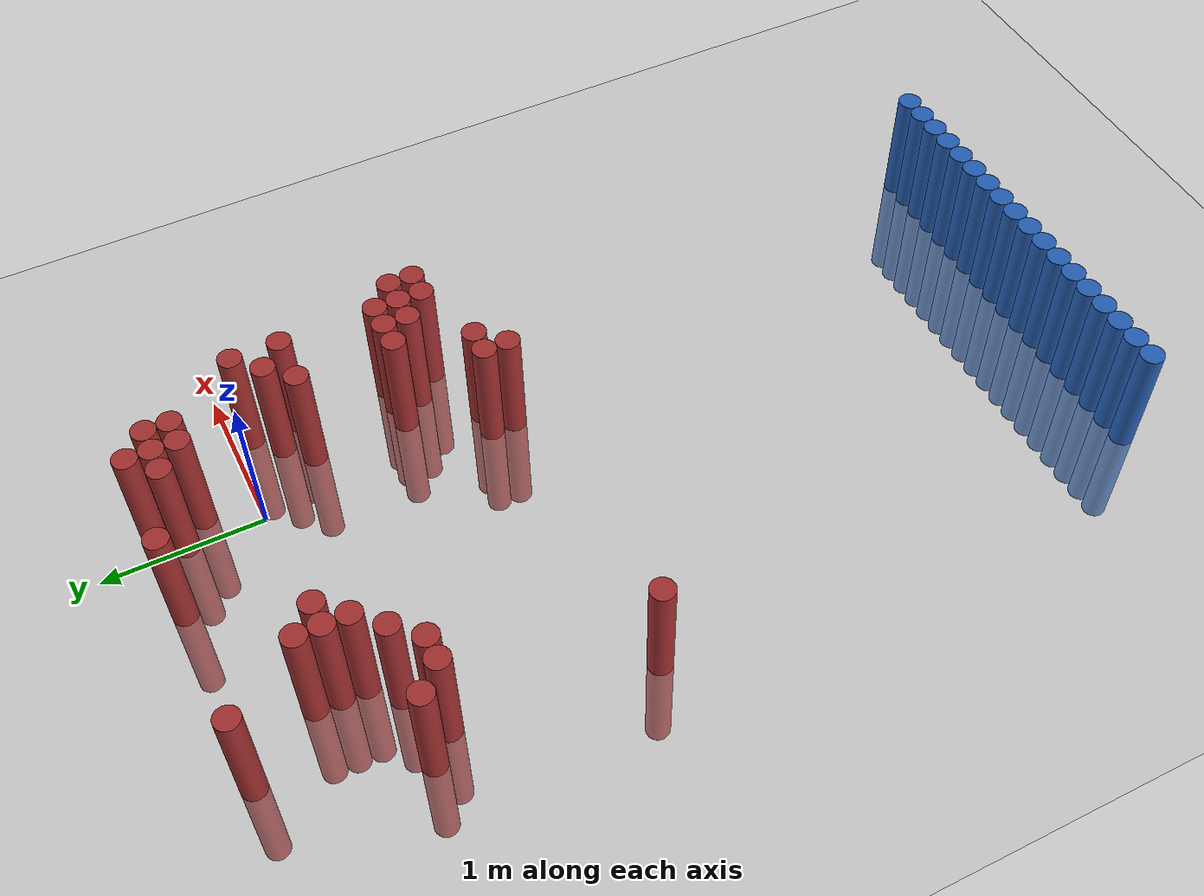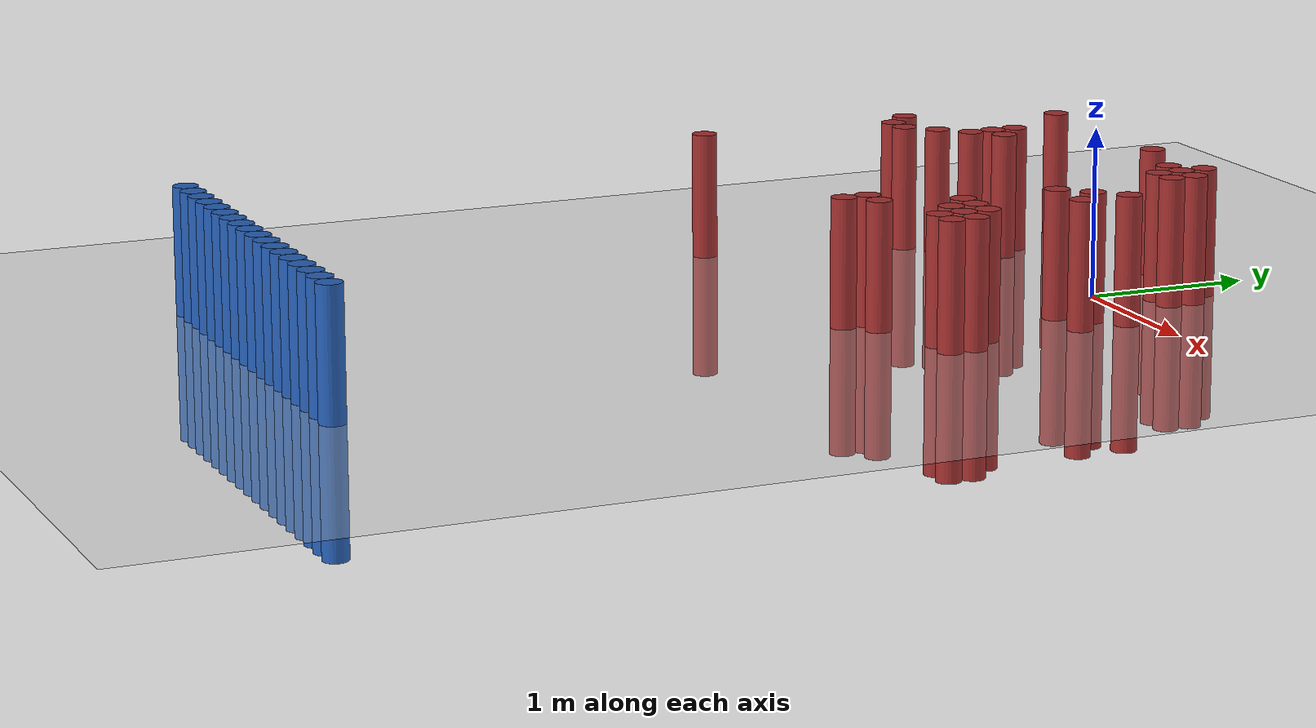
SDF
<sdf version="1.6">
 <world name="default">
  <model name="ground_plane">
   <static>1</static>
   <link name="link">
    <collision name="collision">
     <geometry><plane><normal>0 0 1</normal><size>100 100</size></plane></geometry>
     <surface><friction><ode><mu>100</mu><mu2>50</mu2></ode></friction></surface>
    </collision>
    <visual name="visual">
     <cast_shadows>0</cast_shadows>
     <geometry><plane><normal>0 0 1</normal><size>100 100</size></plane></geometry>
     <material>
      <script><uri>file://media/materials/scripts/gazebo.material</uri><name>Gazebo/Grey</name></script>
     </material>
    </visual>
   </link>
  </model>
  <model name="unit_cylinder_21">
   <static>1</static>
   <pose>0.775000 -4.925000 0.000000 0.000000 0.000000 0.000000</pose>
   <link name="link">
    <inertial>
     <mass>1</mass>
     <inertia><ixx>0.145833</ixx><ixy>0</ixy><ixz>0</ixz><iyy>0.145833</iyy><iyz>0</iyz><izz>0.125</izz></inertia>
    </inertial>
    <collision name="collision">
     <geometry><cylinder><radius>0.075000</radius><length>1.5</length></cylinder></geometry>
    </collision>
    <visual name="visual">
     <geometry><cylinder><radius>0.075000</radius><length>1.5</length></cylinder></geometry>
     <material>
      <ambient>0.152000 0.379000 0.720000 1</ambient>
      <diffuse>0.152000 0.379000 0.720000 1</diffuse>
     </material>
     <material>
      <script><name>Gazebo/Grey</name><uri>file://media/materials/scripts/gazebo.material</uri></script>
     </material>
    </visual>
   </link>
  </model>
  <model name="unit_cylinder_22">
   <static>1</static>
   <pose>0.625000 -4.925000 0.000000 0.000000 0.000000 0.000000</pose>
   <link name="link">
    <inertial>
     <mass>1</mass>
     <inertia><ixx>0.145833</ixx><ixy>0</ixy><ixz>0</ixz><iyy>0.145833</iyy><iyz>0</iyz><izz>0.125</izz></inertia>
    </inertial>
    <collision name="collision">
     <geometry><cylinder><radius>0.075000</radius><length>1.5</length></cylinder></geometry>
    </collision>
    <visual name="visual">
     <geometry><cylinder><radius>0.075000</radius><length>1.5</length></cylinder></geometry>
     <material>
      <ambient>0.152000 0.379000 0.720000 1</ambient>
      <diffuse>0.152000 0.379000 0.720000 1</diffuse>
     </material>
     <material>
      <script><name>Gazebo/Grey</name><uri>file://media/materials/scripts/gazebo.material</uri></script>
     </material>
    </visual>
   </link>
  </model>
  <model name="unit_cylinder_23">
   <static>1</static>
   <pose>0.475000 -4.925000 0.000000 0.000000 0.000000 0.000000</pose>
   <link name="link">
    <inertial>
     <mass>1</mass>
     <inertia><ixx>0.145833</ixx><ixy>0</ixy><ixz>0</ixz><iyy>0.145833</iyy><iyz>0</iyz><izz>0.125</izz></inertia>
    </inertial>
    <collision name="collision">
     <geometry><cylinder><radius>0.075000</radius><length>1.5</length></cylinder></geometry>
    </collision>
    <visual name="visual">
     <geometry><cylinder><radius>0.075000</radius><length>1.5</length></cylinder></geometry>
     <material>
      <ambient>0.152000 0.379000 0.720000 1</ambient>
      <diffuse>0.152000 0.379000 0.720000 1</diffuse>
     </material>
     <material>
      <script><name>Gazebo/Grey</name><uri>file://media/materials/scripts/gazebo.material</uri></script>
     </material>
    </visual>
   </link>
  </model>
  <model name="unit_cylinder_24">
   <static>1</static>
   <pose>0.325000 -4.925000 0.000000 0.000000 0.000000 0.000000</pose>
   <link name="link">
    <inertial>
     <mass>1</mass>
     <inertia><ixx>0.145833</ixx><ixy>0</ixy><ixz>0</ixz><iyy>0.145833</iyy><iyz>0</iyz><izz>0.125</izz></inertia>
    </inertial>
    <collision name="collision">
     <geometry><cylinder><radius>0.075000</radius><length>1.5</length></cylinder></geometry>
    </collision>
    <visual name="visual">
     <geometry><cylinder><radius>0.075000</radius><length>1.5</length></cylinder></geometry>
     <material>
      <ambient>0.152000 0.379000 0.720000 1</ambient>
      <diffuse>0.152000 0.379000 0.720000 1</diffuse>
     </material>
     <material>
      <script><name>Gazebo/Grey</name><uri>file://media/materials/scripts/gazebo.material</uri></script>
     </material>
    </visual>
   </link>
  </model>
  <model name="unit_cylinder_25">
   <static>1</static>
   <pose>0.175000 -4.925000 0.000000 0.000000 0.000000 0.000000</pose>
   <link name="link">
    <inertial>
     <mass>1</mass>
     <inertia><ixx>0.145833</ixx><ixy>0</ixy><ixz>0</ixz><iyy>0.145833</iyy><iyz>0</iyz><izz>0.125</izz></inertia>
    </inertial>
    <collision name="collision">
     <geometry><cylinder><radius>0.075000</radius><length>1.5</length></cylinder></geometry>
    </collision>
    <visual name="visual">
     <geometry><cylinder><radius>0.075000</radius><length>1.5</length></cylinder></geometry>
     <material>
      <ambient>0.152000 0.379000 0.720000 1</ambient>
      <diffuse>0.152000 0.379000 0.720000 1</diffuse>
     </material>
     <material>
      <script><name>Gazebo/Grey</name><uri>file://media/materials/scripts/gazebo.material</uri></script>
     </material>
    </visual>
   </link>
  </model>
  <model name="unit_cylinder_26">
   <static>1</static>
   <pose>0.025000 -4.925000 0.000000 0.000000 0.000000 0.000000</pose>
   <link name="link">
    <inertial>
     <mass>1</mass>
     <inertia><ixx>0.145833</ixx><ixy>0</ixy><ixz>0</ixz><iyy>0.145833</iyy><iyz>0</iyz><izz>0.125</izz></inertia>
    </inertial>
    <collision name="collision">
     <geometry><cylinder><radius>0.075000</radius><length>1.5</length></cylinder></geometry>
    </collision>
    <visual name="visual">
     <geometry><cylinder><radius>0.075000</radius><length>1.5</length></cylinder></geometry>
     <material>
      <ambient>0.152000 0.379000 0.720000 1</ambient>
      <diffuse>0.152000 0.379000 0.720000 1</diffuse>
     </material>
     <material>
      <script><name>Gazebo/Grey</name><uri>file://media/materials/scripts/gazebo.material</uri></script>
     </material>
    </visual>
   </link>
  </model>
  <model name="unit_cylinder_27">
   <static>1</static>
   <pose>-0.125000 -4.925000 0.000000 0.000000 0.000000 0.000000</pose>
   <link name="link">
    <inertial>
     <mass>1</mass>
     <inertia><ixx>0.145833</ixx><ixy>0</ixy><ixz>0</ixz><iyy>0.145833</iyy><iyz>0</iyz><izz>0.125</izz></inertia>
    </inertial>
    <collision name="collision">
     <geometry><cylinder><radius>0.075000</radius><length>1.5</length></cylinder></geometry>
    </collision>
    <visual name="visual">
     <geometry><cylinder><radius>0.075000</radius><length>1.5</length></cylinder></geometry>
     <material>
      <ambient>0.152000 0.379000 0.720000 1</ambient>
      <diffuse>0.152000 0.379000 0.720000 1</diffuse>
     </material>
     <material>
      <script><name>Gazebo/Grey</name><uri>file://media/materials/scripts/gazebo.material</uri></script>
     </material>
    </visual>
   </link>
  </model>
  <model name="unit_cylinder_28">
   <static>1</static>
   <pose>-0.275000 -4.925000 0.000000 0.000000 0.000000 0.000000</pose>
   <link name="link">
    <inertial>
     <mass>1</mass>
     <inertia><ixx>0.145833</ixx><ixy>0</ixy><ixz>0</ixz><iyy>0.145833</iyy><iyz>0</iyz><izz>0.125</izz></inertia>
    </inertial>
    <collision name="collision">
     <geometry><cylinder><radius>0.075000</radius><length>1.5</length></cylinder></geometry>
    </collision>
    <visual name="visual">
     <geometry><cylinder><radius>0.075000</radius><length>1.5</length></cylinder></geometry>
     <material>
      <ambient>0.152000 0.379000 0.720000 1</ambient>
      <diffuse>0.152000 0.379000 0.720000 1</diffuse>
     </material>
     <material>
      <script><name>Gazebo/Grey</name><uri>file://media/materials/scripts/gazebo.material</uri></script>
     </material>
    </visual>
   </link>
  </model>
  <model name="unit_cylinder_29">
   <static>1</static>
   <pose>-0.425000 -4.925000 0.000000 0.000000 0.000000 0.000000</pose>
   <link name="link">
    <inertial>
     <mass>1</mass>
     <inertia><ixx>0.145833</ixx><ixy>0</ixy><ixz>0</ixz><iyy>0.145833</iyy><iyz>0</iyz><izz>0.125</izz></inertia>
    </inertial>
    <collision name="collision">
     <geometry><cylinder><radius>0.075000</radius><length>1.5</length></cylinder></geometry>
    </collision>
    <visual name="visual">
     <geometry><cylinder><radius>0.075000</radius><length>1.5</length></cylinder></geometry>
     <material>
      <ambient>0.152000 0.379000 0.720000 1</ambient>
      <diffuse>0.152000 0.379000 0.720000 1</diffuse>
     </material>
     <material>
      <script><name>Gazebo/Grey</name><uri>file://media/materials/scripts/gazebo.material</uri></script>
     </material>
    </visual>
   </link>
  </model>
  <model name="unit_cylinder_30">
   <static>1</static>
   <pose>-0.575000 -4.925000 0.000000 0.000000 0.000000 0.000000</pose>
   <link name="link">
    <inertial>
     <mass>1</mass>
     <inertia><ixx>0.145833</ixx><ixy>0</ixy><ixz>0</ixz><iyy>0.145833</iyy><iyz>0</iyz><izz>0.125</izz></inertia>
    </inertial>
    <collision name="collision">
     <geometry><cylinder><radius>0.075000</radius><length>1.5</length></cylinder></geometry>
    </collision>
    <visual name="visual">
     <geometry><cylinder><radius>0.075000</radius><length>1.5</length></cylinder></geometry>
     <material>
      <ambient>0.152000 0.379000 0.720000 1</ambient>
      <diffuse>0.152000 0.379000 0.720000 1</diffuse>
     </material>
     <material>
      <script><name>Gazebo/Grey</name><uri>file://media/materials/scripts/gazebo.material</uri></script>
     </material>
    </visual>
   </link>
  </model>
  <model name="unit_cylinder_31">
   <static>1</static>
   <pose>-0.725000 -4.925000 0.000000 0.000000 0.000000 0.000000</pose>
   <link name="link">
    <inertial>
     <mass>1</mass>
     <inertia><ixx>0.145833</ixx><ixy>0</ixy><ixz>0</ixz><iyy>0.145833</iyy><iyz>0</iyz><izz>0.125</izz></inertia>
    </inertial>
    <collision name="collision">
     <geometry><cylinder><radius>0.075000</radius><length>1.5</length></cylinder></geometry>
    </collision>
    <visual name="visual">
     <geometry><cylinder><radius>0.075000</radius><length>1.5</length></cylinder></geometry>
     <material>
      <ambient>0.152000 0.379000 0.720000 1</ambient>
      <diffuse>0.152000 0.379000 0.720000 1</diffuse>
     </material>
     <material>
      <script><name>Gazebo/Grey</name><uri>file://media/materials/scripts/gazebo.material</uri></script>
     </material>
    </visual>
   </link>
  </model>
  <model name="unit_cylinder_32">
   <static>1</static>
   <pose>-0.875000 -4.925000 0.000000 0.000000 0.000000 0.000000</pose>
   <link name="link">
    <inertial>
     <mass>1</mass>
     <inertia><ixx>0.145833</ixx><ixy>0</ixy><ixz>0</ixz><iyy>0.145833</iyy><iyz>0</iyz><izz>0.125</izz></inertia>
    </inertial>
    <collision name="collision">
     <geometry><cylinder><radius>0.075000</radius><length>1.5</length></cylinder></geometry>
    </collision>
    <visual name="visual">
     <geometry><cylinder><radius>0.075000</radius><length>1.5</length></cylinder></geometry>
     <material>
      <ambient>0.152000 0.379000 0.720000 1</ambient>
      <diffuse>0.152000 0.379000 0.720000 1</diffuse>
     </material>
     <material>
      <script><name>Gazebo/Grey</name><uri>file://media/materials/scripts/gazebo.material</uri></script>
     </material>
    </visual>
   </link>
  </model>
  <model name="unit_cylinder_33">
   <static>1</static>
   <pose>-1.025000 -4.925000 0.000000 0.000000 0.000000 0.000000</pose>
   <link name="link">
    <inertial>
     <mass>1</mass>
     <inertia><ixx>0.145833</ixx><ixy>0</ixy><ixz>0</ixz><iyy>0.145833</iyy><iyz>0</iyz><izz>0.125</izz></inertia>
    </inertial>
    <collision name="collision">
     <geometry><cylinder><radius>0.075000</radius><length>1.5</length></cylinder></geometry>
    </collision>
    <visual name="visual">
     <geometry><cylinder><radius>0.075000</radius><length>1.5</length></cylinder></geometry>
     <material>
      <ambient>0.152000 0.379000 0.720000 1</ambient>
      <diffuse>0.152000 0.379000 0.720000 1</diffuse>
     </material>
     <material>
      <script><name>Gazebo/Grey</name><uri>file://media/materials/scripts/gazebo.material</uri></script>
     </material>
    </visual>
   </link>
  </model>
  <model name="unit_cylinder_34">
   <static>1</static>
   <pose>-1.175000 -4.925000 0.000000 0.000000 0.000000 0.000000</pose>
   <link name="link">
    <inertial>
     <mass>1</mass>
     <inertia><ixx>0.145833</ixx><ixy>0</ixy><ixz>0</ixz><iyy>0.145833</iyy><iyz>0</iyz><izz>0.125</izz></inertia>
    </inertial>
    <collision name="collision">
     <geometry><cylinder><radius>0.075000</radius><length>1.5</length></cylinder></geometry>
    </collision>
    <visual name="visual">
     <geometry><cylinder><radius>0.075000</radius><length>1.5</length></cylinder></geometry>
     <material>
      <ambient>0.152000 0.379000 0.720000 1</ambient>
      <diffuse>0.152000 0.379000 0.720000 1</diffuse>
     </material>
     <material>
      <script><name>Gazebo/Grey</name><uri>file://media/materials/scripts/gazebo.material</uri></script>
     </material>
    </visual>
   </link>
  </model>
  <model name="unit_cylinder_35">
   <static>1</static>
   <pose>-1.325000 -4.925000 0.000000 0.000000 0.000000 0.000000</pose>
   <link name="link">
    <inertial>
     <mass>1</mass>
     <inertia><ixx>0.145833</ixx><ixy>0</ixy><ixz>0</ixz><iyy>0.145833</iyy><iyz>0</iyz><izz>0.125</izz></inertia>
    </inertial>
    <collision name="collision">
     <geometry><cylinder><radius>0.075000</radius><length>1.5</length></cylinder></geometry>
    </collision>
    <visual name="visual">
     <geometry><cylinder><radius>0.075000</radius><length>1.5</length></cylinder></geometry>
     <material>
      <ambient>0.152000 0.379000 0.720000 1</ambient>
      <diffuse>0.152000 0.379000 0.720000 1</diffuse>
     </material>
     <material>
      <script><name>Gazebo/Grey</name><uri>file://media/materials/scripts/gazebo.material</uri></script>
     </material>
    </visual>
   </link>
  </model>
  <model name="unit_cylinder_36">
   <static>1</static>
   <pose>-1.475000 -4.925000 0.000000 0.000000 0.000000 0.000000</pose>
   <link name="link">
    <inertial>
     <mass>1</mass>
     <inertia><ixx>0.145833</ixx><ixy>0</ixy><ixz>0</ixz><iyy>0.145833</iyy><iyz>0</iyz><izz>0.125</izz></inertia>
    </inertial>
    <collision name="collision">
     <geometry><cylinder><radius>0.075000</radius><length>1.5</length></cylinder></geometry>
    </collision>
    <visual name="visual">
     <geometry><cylinder><radius>0.075000</radius><length>1.5</length></cylinder></geometry>
     <material>
      <ambient>0.152000 0.379000 0.720000 1</ambient>
      <diffuse>0.152000 0.379000 0.720000 1</diffuse>
     </material>
     <material>
      <script><name>Gazebo/Grey</name><uri>file://media/materials/scripts/gazebo.material</uri></script>
     </material>
    </visual>
   </link>
  </model>
  <model name="unit_cylinder_37">
   <static>1</static>
   <pose>-1.625000 -4.925000 0.000000 0.000000 0.000000 0.000000</pose>
   <link name="link">
    <inertial>
     <mass>1</mass>
     <inertia><ixx>0.145833</ixx><ixy>0</ixy><ixz>0</ixz><iyy>0.145833</iyy><iyz>0</iyz><izz>0.125</izz></inertia>
    </inertial>
    <collision name="collision">
     <geometry><cylinder><radius>0.075000</radius><length>1.5</length></cylinder></geometry>
    </collision>
    <visual name="visual">
     <geometry><cylinder><radius>0.075000</radius><length>1.5</length></cylinder></geometry>
     <material>
      <ambient>0.152000 0.379000 0.720000 1</ambient>
      <diffuse>0.152000 0.379000 0.720000 1</diffuse>
     </material>
     <material>
      <script><name>Gazebo/Grey</name><uri>file://media/materials/scripts/gazebo.material</uri></script>
     </material>
    </visual>
   </link>
  </model>
  <model name="unit_cylinder_38">
   <static>1</static>
   <pose>-1.775000 -4.925000 0.000000 0.000000 0.000000 0.000000</pose>
   <link name="link">
    <inertial>
     <mass>1</mass>
     <inertia><ixx>0.145833</ixx><ixy>0</ixy><ixz>0</ixz><iyy>0.145833</iyy><iyz>0</iyz><izz>0.125</izz></inertia>
    </inertial>
    <collision name="collision">
     <geometry><cylinder><radius>0.075000</radius><length>1.5</length></cylinder></geometry>
    </collision>
    <visual name="visual">
     <geometry><cylinder><radius>0.075000</radius><length>1.5</length></cylinder></geometry>
     <material>
      <ambient>0.152000 0.379000 0.720000 1</ambient>
      <diffuse>0.152000 0.379000 0.720000 1</diffuse>
     </material>
     <material>
      <script><name>Gazebo/Grey</name><uri>file://media/materials/scripts/gazebo.material</uri></script>
     </material>
    </visual>
   </link>
  </model>
  <model name="unit_cylinder_324">
   <static>1</static>
   <pose>-1.925000 -1.625000 0.000000 0.000000 0.000000 0.000000</pose>
   <link name="link">
    <inertial>
     <mass>1</mass>
     <inertia><ixx>0.145833</ixx><ixy>0</ixy><ixz>0</ixz><iyy>0.145833</iyy><iyz>0</iyz><izz>0.125</izz></inertia>
    </inertial>
    <collision name="collision">
     <geometry><cylinder><radius>0.075000</radius><length>1.5</length></cylinder></geometry>
    </collision>
    <visual name="visual">
     <geometry><cylinder><radius>0.075000</radius><length>1.5</length></cylinder></geometry>
     <material>
      <ambient>0.648000 0.192000 0.192000 1</ambient>
      <diffuse>0.648000 0.192000 0.192000 1</diffuse>
     </material>
     <material>
      <script><name>Gazebo/Grey</name><uri>file://media/materials/scripts/gazebo.material</uri></script>
     </material>
    </visual>
   </link>
  </model>
  <model name="unit_cylinder_325">
   <static>1</static>
   <pose>-1.925000 -0.275000 0.000000 0.000000 0.000000 0.000000</pose>
   <link name="link">
    <inertial>
     <mass>1</mass>
     <inertia><ixx>0.145833</ixx><ixy>0</ixy><ixz>0</ixz><iyy>0.145833</iyy><iyz>0</iyz><izz>0.125</izz></inertia>
    </inertial>
    <collision name="collision">
     <geometry><cylinder><radius>0.075000</radius><length>1.5</length></cylinder></geometry>
    </collision>
    <visual name="visual">
     <geometry><cylinder><radius>0.075000</radius><length>1.5</length></cylinder></geometry>
     <material>
      <ambient>0.648000 0.192000 0.192000 1</ambient>
      <diffuse>0.648000 0.192000 0.192000 1</diffuse>
     </material>
     <material>
      <script><name>Gazebo/Grey</name><uri>file://media/materials/scripts/gazebo.material</uri></script>
     </material>
    </visual>
   </link>
  </model>
  <model name="unit_cylinder_329">
   <static>1</static>
   <pose>-1.775000 -0.425000 0.000000 0.000000 0.000000 0.000000</pose>
   <link name="link">
    <inertial>
     <mass>1</mass>
     <inertia><ixx>0.145833</ixx><ixy>0</ixy><ixz>0</ixz><iyy>0.145833</iyy><iyz>0</iyz><izz>0.125</izz></inertia>
    </inertial>
    <collision name="collision">
     <geometry><cylinder><radius>0.075000</radius><length>1.5</length></cylinder></geometry>
    </collision>
    <visual name="visual">
     <geometry><cylinder><radius>0.075000</radius><length>1.5</length></cylinder></geometry>
     <material>
      <ambient>0.648000 0.192000 0.192000 1</ambient>
      <diffuse>0.648000 0.192000 0.192000 1</diffuse>
     </material>
     <material>
      <script><name>Gazebo/Grey</name><uri>file://media/materials/scripts/gazebo.material</uri></script>
     </material>
    </visual>
   </link>
  </model>
  <model name="unit_cylinder_333">
   <static>1</static>
   <pose>-1.625000 -0.425000 0.000000 0.000000 0.000000 0.000000</pose>
   <link name="link">
    <inertial>
     <mass>1</mass>
     <inertia><ixx>0.145833</ixx><ixy>0</ixy><ixz>0</ixz><iyy>0.145833</iyy><iyz>0</iyz><izz>0.125</izz></inertia>
    </inertial>
    <collision name="collision">
     <geometry><cylinder><radius>0.075000</radius><length>1.5</length></cylinder></geometry>
    </collision>
    <visual name="visual">
     <geometry><cylinder><radius>0.075000</radius><length>1.5</length></cylinder></geometry>
     <material>
      <ambient>0.648000 0.192000 0.192000 1</ambient>
      <diffuse>0.648000 0.192000 0.192000 1</diffuse>
     </material>
     <material>
      <script><name>Gazebo/Grey</name><uri>file://media/materials/scripts/gazebo.material</uri></script>
     </material>
    </visual>
   </link>
  </model>
  <model name="unit_cylinder_334">
   <static>1</static>
   <pose>-1.625000 0.625000 0.000000 0.000000 0.000000 0.000000</pose>
   <link name="link">
    <inertial>
     <mass>1</mass>
     <inertia><ixx>0.145833</ixx><ixy>0</ixy><ixz>0</ixz><iyy>0.145833</iyy><iyz>0</iyz><izz>0.125</izz></inertia>
    </inertial>
    <collision name="collision">
     <geometry><cylinder><radius>0.075000</radius><length>1.5</length></cylinder></geometry>
    </collision>
    <visual name="visual">
     <geometry><cylinder><radius>0.075000</radius><length>1.5</length></cylinder></geometry>
     <material>
      <ambient>0.648000 0.192000 0.192000 1</ambient>
      <diffuse>0.648000 0.192000 0.192000 1</diffuse>
     </material>
     <material>
      <script><name>Gazebo/Grey</name><uri>file://media/materials/scripts/gazebo.material</uri></script>
     </material>
    </visual>
   </link>
  </model>
  <model name="unit_cylinder_338">
   <static>1</static>
   <pose>-1.475000 -0.275000 0.000000 0.000000 0.000000 0.000000</pose>
   <link name="link">
    <inertial>
     <mass>1</mass>
     <inertia><ixx>0.145833</ixx><ixy>0</ixy><ixz>0</ixz><iyy>0.145833</iyy><iyz>0</iyz><izz>0.125</izz></inertia>
    </inertial>
    <collision name="collision">
     <geometry><cylinder><radius>0.075000</radius><length>1.5</length></cylinder></geometry>
    </collision>
    <visual name="visual">
     <geometry><cylinder><radius>0.075000</radius><length>1.5</length></cylinder></geometry>
     <material>
      <ambient>0.648000 0.192000 0.192000 1</ambient>
      <diffuse>0.648000 0.192000 0.192000 1</diffuse>
     </material>
     <material>
      <script><name>Gazebo/Grey</name><uri>file://media/materials/scripts/gazebo.material</uri></script>
     </material>
    </visual>
   </link>
  </model>
  <model name="unit_cylinder_341">
   <static>1</static>
   <pose>-1.325000 -0.125000 0.000000 0.000000 0.000000 0.000000</pose>
   <link name="link">
    <inertial>
     <mass>1</mass>
     <inertia><ixx>0.145833</ixx><ixy>0</ixy><ixz>0</ixz><iyy>0.145833</iyy><iyz>0</iyz><izz>0.125</izz></inertia>
    </inertial>
    <collision name="collision">
     <geometry><cylinder><radius>0.075000</radius><length>1.5</length></cylinder></geometry>
    </collision>
    <visual name="visual">
     <geometry><cylinder><radius>0.075000</radius><length>1.5</length></cylinder></geometry>
     <material>
      <ambient>0.648000 0.192000 0.192000 1</ambient>
      <diffuse>0.648000 0.192000 0.192000 1</diffuse>
     </material>
     <material>
      <script><name>Gazebo/Grey</name><uri>file://media/materials/scripts/gazebo.material</uri></script>
     </material>
    </visual>
   </link>
  </model>
  <model name="unit_cylinder_342">
   <static>1</static>
   <pose>-1.325000 0.025000 0.000000 0.000000 0.000000 0.000000</pose>
   <link name="link">
    <inertial>
     <mass>1</mass>
     <inertia><ixx>0.145833</ixx><ixy>0</ixy><ixz>0</ixz><iyy>0.145833</iyy><iyz>0</iyz><izz>0.125</izz></inertia>
    </inertial>
    <collision name="collision">
     <geometry><cylinder><radius>0.075000</radius><length>1.5</length></cylinder></geometry>
    </collision>
    <visual name="visual">
     <geometry><cylinder><radius>0.075000</radius><length>1.5</length></cylinder></geometry>
     <material>
      <ambient>0.648000 0.192000 0.192000 1</ambient>
      <diffuse>0.648000 0.192000 0.192000 1</diffuse>
     </material>
     <material>
      <script><name>Gazebo/Grey</name><uri>file://media/materials/scripts/gazebo.material</uri></script>
     </material>
    </visual>
   </link>
  </model>
  <model name="unit_cylinder_343">
   <static>1</static>
   <pose>-1.325000 0.175000 0.000000 0.000000 0.000000 0.000000</pose>
   <link name="link">
    <inertial>
     <mass>1</mass>
     <inertia><ixx>0.145833</ixx><ixy>0</ixy><ixz>0</ixz><iyy>0.145833</iyy><iyz>0</iyz><izz>0.125</izz></inertia>
    </inertial>
    <collision name="collision">
     <geometry><cylinder><radius>0.075000</radius><length>1.5</length></cylinder></geometry>
    </collision>
    <visual name="visual">
     <geometry><cylinder><radius>0.075000</radius><length>1.5</length></cylinder></geometry>
     <material>
      <ambient>0.648000 0.192000 0.192000 1</ambient>
      <diffuse>0.648000 0.192000 0.192000 1</diffuse>
     </material>
     <material>
      <script><name>Gazebo/Grey</name><uri>file://media/materials/scripts/gazebo.material</uri></script>
     </material>
    </visual>
   </link>
  </model>
  <model name="unit_cylinder_348">
   <static>1</static>
   <pose>-1.175000 0.025000 0.000000 0.000000 0.000000 0.000000</pose>
   <link name="link">
    <inertial>
     <mass>1</mass>
     <inertia><ixx>0.145833</ixx><ixy>0</ixy><ixz>0</ixz><iyy>0.145833</iyy><iyz>0</iyz><izz>0.125</izz></inertia>
    </inertial>
    <collision name="collision">
     <geometry><cylinder><radius>0.075000</radius><length>1.5</length></cylinder></geometry>
    </collision>
    <visual name="visual">
     <geometry><cylinder><radius>0.075000</radius><length>1.5</length></cylinder></geometry>
     <material>
      <ambient>0.648000 0.192000 0.192000 1</ambient>
      <diffuse>0.648000 0.192000 0.192000 1</diffuse>
     </material>
     <material>
      <script><name>Gazebo/Grey</name><uri>file://media/materials/scripts/gazebo.material</uri></script>
     </material>
    </visual>
   </link>
  </model>
  <model name="unit_cylinder_371">
   <static>1</static>
   <pose>-0.425000 0.625000 0.000000 0.000000 0.000000 0.000000</pose>
   <link name="link">
    <inertial>
     <mass>1</mass>
     <inertia><ixx>0.145833</ixx><ixy>0</ixy><ixz>0</ixz><iyy>0.145833</iyy><iyz>0</iyz><izz>0.125</izz></inertia>
    </inertial>
    <collision name="collision">
     <geometry><cylinder><radius>0.075000</radius><length>1.5</length></cylinder></geometry>
    </collision>
    <visual name="visual">
     <geometry><cylinder><radius>0.075000</radius><length>1.5</length></cylinder></geometry>
     <material>
      <ambient>0.648000 0.192000 0.192000 1</ambient>
      <diffuse>0.648000 0.192000 0.192000 1</diffuse>
     </material>
     <material>
      <script><name>Gazebo/Grey</name><uri>file://media/materials/scripts/gazebo.material</uri></script>
     </material>
    </visual>
   </link>
  </model>
  <model name="unit_cylinder_380">
   <static>1</static>
   <pose>0.025000 -1.625000 0.000000 0.000000 0.000000 0.000000</pose>
   <link name="link">
    <inertial>
     <mass>1</mass>
     <inertia><ixx>0.145833</ixx><ixy>0</ixy><ixz>0</ixz><iyy>0.145833</iyy><iyz>0</iyz><izz>0.125</izz></inertia>
    </inertial>
    <collision name="collision">
     <geometry><cylinder><radius>0.075000</radius><length>1.5</length></cylinder></geometry>
    </collision>
    <visual name="visual">
     <geometry><cylinder><radius>0.075000</radius><length>1.5</length></cylinder></geometry>
     <material>
      <ambient>0.648000 0.192000 0.192000 1</ambient>
      <diffuse>0.648000 0.192000 0.192000 1</diffuse>
     </material>
     <material>
      <script><name>Gazebo/Grey</name><uri>file://media/materials/scripts/gazebo.material</uri></script>
     </material>
    </visual>
   </link>
  </model>
  <model name="unit_cylinder_381">
   <static>1</static>
   <pose>0.025000 -1.475000 0.000000 0.000000 0.000000 0.000000</pose>
   <link name="link">
    <inertial>
     <mass>1</mass>
     <inertia><ixx>0.145833</ixx><ixy>0</ixy><ixz>0</ixz><iyy>0.145833</iyy><iyz>0</iyz><izz>0.125</izz></inertia>
    </inertial>
    <collision name="collision">
     <geometry><cylinder><radius>0.075000</radius><length>1.5</length></cylinder></geometry>
    </collision>
    <visual name="visual">
     <geometry><cylinder><radius>0.075000</radius><length>1.5</length></cylinder></geometry>
     <material>
      <ambient>0.648000 0.192000 0.192000 1</ambient>
      <diffuse>0.648000 0.192000 0.192000 1</diffuse>
     </material>
     <material>
      <script><name>Gazebo/Grey</name><uri>file://media/materials/scripts/gazebo.material</uri></script>
     </material>
    </visual>
   </link>
  </model>
  <model name="unit_cylinder_382">
   <static>1</static>
   <pose>0.025000 0.475000 0.000000 0.000000 0.000000 0.000000</pose>
   <link name="link">
    <inertial>
     <mass>1</mass>
     <inertia><ixx>0.145833</ixx><ixy>0</ixy><ixz>0</ixz><iyy>0.145833</iyy><iyz>0</iyz><izz>0.125</izz></inertia>
    </inertial>
    <collision name="collision">
     <geometry><cylinder><radius>0.075000</radius><length>1.5</length></cylinder></geometry>
    </collision>
    <visual name="visual">
     <geometry><cylinder><radius>0.075000</radius><length>1.5</length></cylinder></geometry>
     <material>
      <ambient>0.648000 0.192000 0.192000 1</ambient>
      <diffuse>0.648000 0.192000 0.192000 1</diffuse>
     </material>
     <material>
      <script><name>Gazebo/Grey</name><uri>file://media/materials/scripts/gazebo.material</uri></script>
     </material>
    </visual>
   </link>
  </model>
  <model name="unit_cylinder_383">
   <static>1</static>
   <pose>0.175000 -1.475000 0.000000 0.000000 0.000000 0.000000</pose>
   <link name="link">
    <inertial>
     <mass>1</mass>
     <inertia><ixx>0.145833</ixx><ixy>0</ixy><ixz>0</ixz><iyy>0.145833</iyy><iyz>0</iyz><izz>0.125</izz></inertia>
    </inertial>
    <collision name="collision">
     <geometry><cylinder><radius>0.075000</radius><length>1.5</length></cylinder></geometry>
    </collision>
    <visual name="visual">
     <geometry><cylinder><radius>0.075000</radius><length>1.5</length></cylinder></geometry>
     <material>
      <ambient>0.648000 0.192000 0.192000 1</ambient>
      <diffuse>0.648000 0.192000 0.192000 1</diffuse>
     </material>
     <material>
      <script><name>Gazebo/Grey</name><uri>file://media/materials/scripts/gazebo.material</uri></script>
     </material>
    </visual>
   </link>
  </model>
  <model name="unit_cylinder_384">
   <static>1</static>
   <pose>0.175000 0.325000 0.000000 0.000000 0.000000 0.000000</pose>
   <link name="link">
    <inertial>
     <mass>1</mass>
     <inertia><ixx>0.145833</ixx><ixy>0</ixy><ixz>0</ixz><iyy>0.145833</iyy><iyz>0</iyz><izz>0.125</izz></inertia>
    </inertial>
    <collision name="collision">
     <geometry><cylinder><radius>0.075000</radius><length>1.5</length></cylinder></geometry>
    </collision>
    <visual name="visual">
     <geometry><cylinder><radius>0.075000</radius><length>1.5</length></cylinder></geometry>
     <material>
      <ambient>0.648000 0.192000 0.192000 1</ambient>
      <diffuse>0.648000 0.192000 0.192000 1</diffuse>
     </material>
     <material>
      <script><name>Gazebo/Grey</name><uri>file://media/materials/scripts/gazebo.material</uri></script>
     </material>
    </visual>
   </link>
  </model>
  <model name="unit_cylinder_385">
   <static>1</static>
   <pose>0.175000 0.475000 0.000000 0.000000 0.000000 0.000000</pose>
   <link name="link">
    <inertial>
     <mass>1</mass>
     <inertia><ixx>0.145833</ixx><ixy>0</ixy><ixz>0</ixz><iyy>0.145833</iyy><iyz>0</iyz><izz>0.125</izz></inertia>
    </inertial>
    <collision name="collision">
     <geometry><cylinder><radius>0.075000</radius><length>1.5</length></cylinder></geometry>
    </collision>
    <visual name="visual">
     <geometry><cylinder><radius>0.075000</radius><length>1.5</length></cylinder></geometry>
     <material>
      <ambient>0.648000 0.192000 0.192000 1</ambient>
      <diffuse>0.648000 0.192000 0.192000 1</diffuse>
     </material>
     <material>
      <script><name>Gazebo/Grey</name><uri>file://media/materials/scripts/gazebo.material</uri></script>
     </material>
    </visual>
   </link>
  </model>
  <model name="unit_cylinder_386">
   <static>1</static>
   <pose>0.175000 0.625000 0.000000 0.000000 0.000000 0.000000</pose>
   <link name="link">
    <inertial>
     <mass>1</mass>
     <inertia><ixx>0.145833</ixx><ixy>0</ixy><ixz>0</ixz><iyy>0.145833</iyy><iyz>0</iyz><izz>0.125</izz></inertia>
    </inertial>
    <collision name="collision">
     <geometry><cylinder><radius>0.075000</radius><length>1.5</length></cylinder></geometry>
    </collision>
    <visual name="visual">
     <geometry><cylinder><radius>0.075000</radius><length>1.5</length></cylinder></geometry>
     <material>
      <ambient>0.648000 0.192000 0.192000 1</ambient>
      <diffuse>0.648000 0.192000 0.192000 1</diffuse>
     </material>
     <material>
      <script><name>Gazebo/Grey</name><uri>file://media/materials/scripts/gazebo.material</uri></script>
     </material>
    </visual>
   </link>
  </model>
  <model name="unit_cylinder_388">
   <static>1</static>
   <pose>0.325000 -1.025000 0.000000 0.000000 0.000000 0.000000</pose>
   <link name="link">
    <inertial>
     <mass>1</mass>
     <inertia><ixx>0.145833</ixx><ixy>0</ixy><ixz>0</ixz><iyy>0.145833</iyy><iyz>0</iyz><izz>0.125</izz></inertia>
    </inertial>
    <collision name="collision">
     <geometry><cylinder><radius>0.075000</radius><length>1.5</length></cylinder></geometry>
    </collision>
    <visual name="visual">
     <geometry><cylinder><radius>0.075000</radius><length>1.5</length></cylinder></geometry>
     <material>
      <ambient>0.648000 0.192000 0.192000 1</ambient>
      <diffuse>0.648000 0.192000 0.192000 1</diffuse>
     </material>
     <material>
      <script><name>Gazebo/Grey</name><uri>file://media/materials/scripts/gazebo.material</uri></script>
     </material>
    </visual>
   </link>
  </model>
  <model name="unit_cylinder_389">
   <static>1</static>
   <pose>0.325000 -0.425000 0.000000 0.000000 0.000000 0.000000</pose>
   <link name="link">
    <inertial>
     <mass>1</mass>
     <inertia><ixx>0.145833</ixx><ixy>0</ixy><ixz>0</ixz><iyy>0.145833</iyy><iyz>0</iyz><izz>0.125</izz></inertia>
    </inertial>
    <collision name="collision">
     <geometry><cylinder><radius>0.075000</radius><length>1.5</length></cylinder></geometry>
    </collision>
    <visual name="visual">
     <geometry><cylinder><radius>0.075000</radius><length>1.5</length></cylinder></geometry>
     <material>
      <ambient>0.648000 0.192000 0.192000 1</ambient>
      <diffuse>0.648000 0.192000 0.192000 1</diffuse>
     </material>
     <material>
      <script><name>Gazebo/Grey</name><uri>file://media/materials/scripts/gazebo.material</uri></script>
     </material>
    </visual>
   </link>
  </model>
  <model name="unit_cylinder_390">
   <static>1</static>
   <pose>0.325000 0.325000 0.000000 0.000000 0.000000 0.000000</pose>
   <link name="link">
    <inertial>
     <mass>1</mass>
     <inertia><ixx>0.145833</ixx><ixy>0</ixy><ixz>0</ixz><iyy>0.145833</iyy><iyz>0</iyz><izz>0.125</izz></inertia>
    </inertial>
    <collision name="collision">
     <geometry><cylinder><radius>0.075000</radius><length>1.5</length></cylinder></geometry>
    </collision>
    <visual name="visual">
     <geometry><cylinder><radius>0.075000</radius><length>1.5</length></cylinder></geometry>
     <material>
      <ambient>0.648000 0.192000 0.192000 1</ambient>
      <diffuse>0.648000 0.192000 0.192000 1</diffuse>
     </material>
     <material>
      <script><name>Gazebo/Grey</name><uri>file://media/materials/scripts/gazebo.material</uri></script>
     </material>
    </visual>
   </link>
  </model>
  <model name="unit_cylinder_391">
   <static>1</static>
   <pose>0.325000 0.475000 0.000000 0.000000 0.000000 0.000000</pose>
   <link name="link">
    <inertial>
     <mass>1</mass>
     <inertia><ixx>0.145833</ixx><ixy>0</ixy><ixz>0</ixz><iyy>0.145833</iyy><iyz>0</iyz><izz>0.125</izz></inertia>
    </inertial>
    <collision name="collision">
     <geometry><cylinder><radius>0.075000</radius><length>1.5</length></cylinder></geometry>
    </collision>
    <visual name="visual">
     <geometry><cylinder><radius>0.075000</radius><length>1.5</length></cylinder></geometry>
     <material>
      <ambient>0.648000 0.192000 0.192000 1</ambient>
      <diffuse>0.648000 0.192000 0.192000 1</diffuse>
     </material>
     <material>
      <script><name>Gazebo/Grey</name><uri>file://media/materials/scripts/gazebo.material</uri></script>
     </material>
    </visual>
   </link>
  </model>
  <model name="unit_cylinder_395">
   <static>1</static>
   <pose>0.475000 -1.175000 0.000000 0.000000 0.000000 0.000000</pose>
   <link name="link">
    <inertial>
     <mass>1</mass>
     <inertia><ixx>0.145833</ixx><ixy>0</ixy><ixz>0</ixz><iyy>0.145833</iyy><iyz>0</iyz><izz>0.125</izz></inertia>
    </inertial>
    <collision name="collision">
     <geometry><cylinder><radius>0.075000</radius><length>1.5</length></cylinder></geometry>
    </collision>
    <visual name="visual">
     <geometry><cylinder><radius>0.075000</radius><length>1.5</length></cylinder></geometry>
     <material>
      <ambient>0.648000 0.192000 0.192000 1</ambient>
      <diffuse>0.648000 0.192000 0.192000 1</diffuse>
     </material>
     <material>
      <script><name>Gazebo/Grey</name><uri>file://media/materials/scripts/gazebo.material</uri></script>
     </material>
    </visual>
   </link>
  </model>
  <model name="unit_cylinder_396">
   <static>1</static>
   <pose>0.475000 -1.025000 0.000000 0.000000 0.000000 0.000000</pose>
   <link name="link">
    <inertial>
     <mass>1</mass>
     <inertia><ixx>0.145833</ixx><ixy>0</ixy><ixz>0</ixz><iyy>0.145833</iyy><iyz>0</iyz><izz>0.125</izz></inertia>
    </inertial>
    <collision name="collision">
     <geometry><cylinder><radius>0.075000</radius><length>1.5</length></cylinder></geometry>
    </collision>
    <visual name="visual">
     <geometry><cylinder><radius>0.075000</radius><length>1.5</length></cylinder></geometry>
     <material>
      <ambient>0.648000 0.192000 0.192000 1</ambient>
      <diffuse>0.648000 0.192000 0.192000 1</diffuse>
     </material>
     <material>
      <script><name>Gazebo/Grey</name><uri>file://media/materials/scripts/gazebo.material</uri></script>
     </material>
    </visual>
   </link>
  </model>
  <model name="unit_cylinder_397">
   <static>1</static>
   <pose>0.475000 -0.275000 0.000000 0.000000 0.000000 0.000000</pose>
   <link name="link">
    <inertial>
     <mass>1</mass>
     <inertia><ixx>0.145833</ixx><ixy>0</ixy><ixz>0</ixz><iyy>0.145833</iyy><iyz>0</iyz><izz>0.125</izz></inertia>
    </inertial>
    <collision name="collision">
     <geometry><cylinder><radius>0.075000</radius><length>1.5</length></cylinder></geometry>
    </collision>
    <visual name="visual">
     <geometry><cylinder><radius>0.075000</radius><length>1.5</length></cylinder></geometry>
     <material>
      <ambient>0.648000 0.192000 0.192000 1</ambient>
      <diffuse>0.648000 0.192000 0.192000 1</diffuse>
     </material>
     <material>
      <script><name>Gazebo/Grey</name><uri>file://media/materials/scripts/gazebo.material</uri></script>
     </material>
    </visual>
   </link>
  </model>
  <model name="unit_cylinder_400">
   <static>1</static>
   <pose>0.625000 -1.325000 0.000000 0.000000 0.000000 0.000000</pose>
   <link name="link">
    <inertial>
     <mass>1</mass>
     <inertia><ixx>0.145833</ixx><ixy>0</ixy><ixz>0</ixz><iyy>0.145833</iyy><iyz>0</iyz><izz>0.125</izz></inertia>
    </inertial>
    <collision name="collision">
     <geometry><cylinder><radius>0.075000</radius><length>1.5</length></cylinder></geometry>
    </collision>
    <visual name="visual">
     <geometry><cylinder><radius>0.075000</radius><length>1.5</length></cylinder></geometry>
     <material>
      <ambient>0.648000 0.192000 0.192000 1</ambient>
      <diffuse>0.648000 0.192000 0.192000 1</diffuse>
     </material>
     <material>
      <script><name>Gazebo/Grey</name><uri>file://media/materials/scripts/gazebo.material</uri></script>
     </material>
    </visual>
   </link>
  </model>
  <model name="unit_cylinder_401">
   <static>1</static>
   <pose>0.625000 -1.175000 0.000000 0.000000 0.000000 0.000000</pose>
   <link name="link">
    <inertial>
     <mass>1</mass>
     <inertia><ixx>0.145833</ixx><ixy>0</ixy><ixz>0</ixz><iyy>0.145833</iyy><iyz>0</iyz><izz>0.125</izz></inertia>
    </inertial>
    <collision name="collision">
     <geometry><cylinder><radius>0.075000</radius><length>1.5</length></cylinder></geometry>
    </collision>
    <visual name="visual">
     <geometry><cylinder><radius>0.075000</radius><length>1.5</length></cylinder></geometry>
     <material>
      <ambient>0.648000 0.192000 0.192000 1</ambient>
      <diffuse>0.648000 0.192000 0.192000 1</diffuse>
     </material>
     <material>
      <script><name>Gazebo/Grey</name><uri>file://media/materials/scripts/gazebo.material</uri></script>
     </material>
    </visual>
   </link>
  </model>
  <model name="unit_cylinder_402">
   <static>1</static>
   <pose>0.625000 -1.025000 0.000000 0.000000 0.000000 0.000000</pose>
   <link name="link">
    <inertial>
     <mass>1</mass>
     <inertia><ixx>0.145833</ixx><ixy>0</ixy><ixz>0</ixz><iyy>0.145833</iyy><iyz>0</iyz><izz>0.125</izz></inertia>
    </inertial>
    <collision name="collision">
     <geometry><cylinder><radius>0.075000</radius><length>1.5</length></cylinder></geometry>
    </collision>
    <visual name="visual">
     <geometry><cylinder><radius>0.075000</radius><length>1.5</length></cylinder></geometry>
     <material>
      <ambient>0.648000 0.192000 0.192000 1</ambient>
      <diffuse>0.648000 0.192000 0.192000 1</diffuse>
     </material>
     <material>
      <script><name>Gazebo/Grey</name><uri>file://media/materials/scripts/gazebo.material</uri></script>
     </material>
    </visual>
   </link>
  </model>
  <model name="unit_cylinder_403">
   <static>1</static>
   <pose>0.625000 -0.425000 0.000000 0.000000 0.000000 0.000000</pose>
   <link name="link">
    <inertial>
     <mass>1</mass>
     <inertia><ixx>0.145833</ixx><ixy>0</ixy><ixz>0</ixz><iyy>0.145833</iyy><iyz>0</iyz><izz>0.125</izz></inertia>
    </inertial>
    <collision name="collision">
     <geometry><cylinder><radius>0.075000</radius><length>1.5</length></cylinder></geometry>
    </collision>
    <visual name="visual">
     <geometry><cylinder><radius>0.075000</radius><length>1.5</length></cylinder></geometry>
     <material>
      <ambient>0.648000 0.192000 0.192000 1</ambient>
      <diffuse>0.648000 0.192000 0.192000 1</diffuse>
     </material>
     <material>
      <script><name>Gazebo/Grey</name><uri>file://media/materials/scripts/gazebo.material</uri></script>
     </material>
    </visual>
   </link>
  </model>
  <model name="unit_cylinder_404">
   <static>1</static>
   <pose>0.625000 -0.125000 0.000000 0.000000 0.000000 0.000000</pose>
   <link name="link">
    <inertial>
     <mass>1</mass>
     <inertia><ixx>0.145833</ixx><ixy>0</ixy><ixz>0</ixz><iyy>0.145833</iyy><iyz>0</iyz><izz>0.125</izz></inertia>
    </inertial>
    <collision name="collision">
     <geometry><cylinder><radius>0.075000</radius><length>1.5</length></cylinder></geometry>
    </collision>
    <visual name="visual">
     <geometry><cylinder><radius>0.075000</radius><length>1.5</length></cylinder></geometry>
     <material>
      <ambient>0.648000 0.192000 0.192000 1</ambient>
      <diffuse>0.648000 0.192000 0.192000 1</diffuse>
     </material>
     <material>
      <script><name>Gazebo/Grey</name><uri>file://media/materials/scripts/gazebo.material</uri></script>
     </material>
    </visual>
   </link>
  </model>
  <model name="unit_cylinder_407">
   <static>1</static>
   <pose>0.775000 -1.325000 0.000000 0.000000 0.000000 0.000000</pose>
   <link name="link">
    <inertial>
     <mass>1</mass>
     <inertia><ixx>0.145833</ixx><ixy>0</ixy><ixz>0</ixz><iyy>0.145833</iyy><iyz>0</iyz><izz>0.125</izz></inertia>
    </inertial>
    <collision name="collision">
     <geometry><cylinder><radius>0.075000</radius><length>1.5</length></cylinder></geometry>
    </collision>
    <visual name="visual">
     <geometry><cylinder><radius>0.075000</radius><length>1.5</length></cylinder></geometry>
     <material>
      <ambient>0.648000 0.192000 0.192000 1</ambient>
      <diffuse>0.648000 0.192000 0.192000 1</diffuse>
     </material>
     <material>
      <script><name>Gazebo/Grey</name><uri>file://media/materials/scripts/gazebo.material</uri></script>
     </material>
    </visual>
   </link>
  </model>
  <model name="unit_cylinder_408">
   <static>1</static>
   <pose>0.775000 -1.175000 0.000000 0.000000 0.000000 0.000000</pose>
   <link name="link">
    <inertial>
     <mass>1</mass>
     <inertia><ixx>0.145833</ixx><ixy>0</ixy><ixz>0</ixz><iyy>0.145833</iyy><iyz>0</iyz><izz>0.125</izz></inertia>
    </inertial>
    <collision name="collision">
     <geometry><cylinder><radius>0.075000</radius><length>1.5</length></cylinder></geometry>
    </collision>
    <visual name="visual">
     <geometry><cylinder><radius>0.075000</radius><length>1.5</length></cylinder></geometry>
     <material>
      <ambient>0.648000 0.192000 0.192000 1</ambient>
      <diffuse>0.648000 0.192000 0.192000 1</diffuse>
     </material>
     <material>
      <script><name>Gazebo/Grey</name><uri>file://media/materials/scripts/gazebo.material</uri></script>
     </material>
    </visual>
   </link>
  </model>
 </world>
</sdf>
